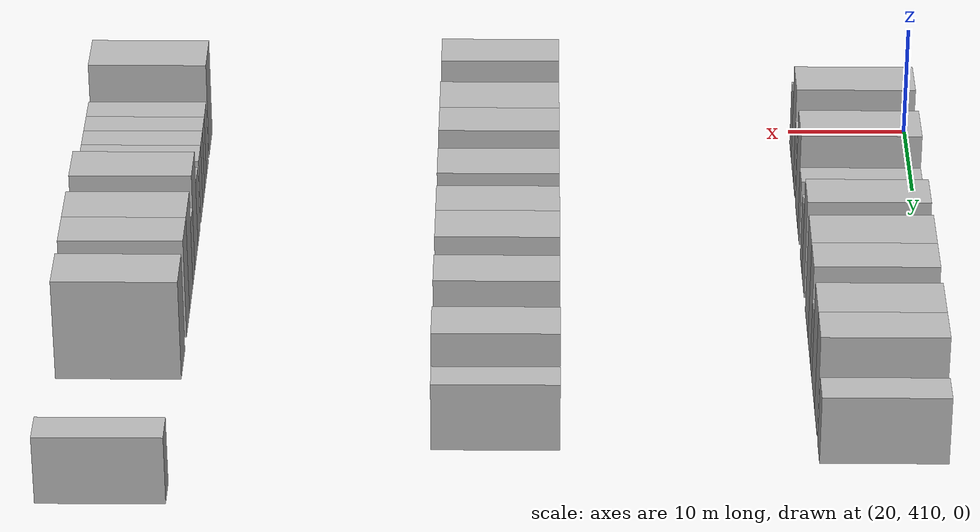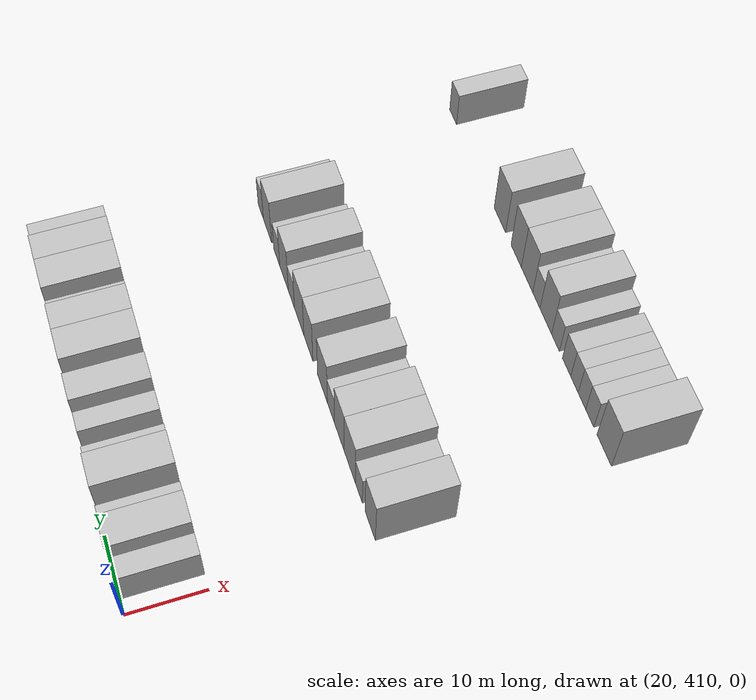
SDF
<sdf version="1.6">
 <world name="default">
  <model name="building_222">
   <static>1</static>
   <pose>25.0000 413.2878 0 0.000000 0.000000 0.000000</pose>
   <link name="link">
    <pose>0 0 3.00 0 0 0</pose>
    <collision name="collision"><geometry><box><size>10.0000 2.7403 6.0000</size></box></geometry></collision>
    <visual name="visual">
     <cast_shadows>0</cast_shadows>
     <geometry><box><size>10.0000 2.7403 6.0000</size></box></geometry>
     <material>
      <script>
       <uri>model://HANNAS_wall/materials/scripts</uri>
       <uri>model://HANNAS_wall/materials/textures</uri>
       <name>vrc/HANNAS_wall</name>
      </script>
     </material>
    </visual>
   </link>
  </model>
  <model name="building_223">
   <static>1</static>
   <pose>25.0000 416.7062 0 0.000000 0.000000 0.000000</pose>
   <link name="link">
    <pose>0 0 4.50 0 0 0</pose>
    <collision name="collision"><geometry><box><size>10.0000 4.0963 9.0000</size></box></geometry></collision>
    <visual name="visual">
     <cast_shadows>0</cast_shadows>
     <geometry><box><size>10.0000 4.0963 9.0000</size></box></geometry>
     <material>
      <script>
       <uri>model://HANNAS_wall/materials/scripts</uri>
       <uri>model://HANNAS_wall/materials/textures</uri>
       <name>vrc/HANNAS_wall</name>
      </script>
     </material>
    </visual>
   </link>
  </model>
  <model name="building_224">
   <static>1</static>
   <pose>25.0000 420.0218 0 0.000000 0.000000 0.000000</pose>
   <link name="link">
    <pose>0 0 3.00 0 0 0</pose>
    <collision name="collision"><geometry><box><size>10.0000 2.5350 6.0000</size></box></geometry></collision>
    <visual name="visual">
     <cast_shadows>0</cast_shadows>
     <geometry><box><size>10.0000 2.5350 6.0000</size></box></geometry>
     <material>
      <script>
       <uri>model://HANNAS_wall/materials/scripts</uri>
       <uri>model://HANNAS_wall/materials/textures</uri>
       <name>vrc/HANNAS_wall</name>
      </script>
     </material>
    </visual>
   </link>
  </model>
  <model name="building_225">
   <static>1</static>
   <pose>25.0000 424.4759 0 0.000000 0.000000 0.000000</pose>
   <link name="link">
    <pose>0 0 4.50 0 0 0</pose>
    <collision name="collision"><geometry><box><size>10.0000 4.3731 9.0000</size></box></geometry></collision>
    <visual name="visual">
     <cast_shadows>0</cast_shadows>
     <geometry><box><size>10.0000 4.3731 9.0000</size></box></geometry>
     <material>
      <script>
       <uri>model://HANNAS_wall/materials/scripts</uri>
       <uri>model://HANNAS_wall/materials/textures</uri>
       <name>vrc/HANNAS_wall</name>
      </script>
     </material>
    </visual>
   </link>
  </model>
  <model name="building_226">
   <static>1</static>
   <pose>25.0000 427.8697 0 0.000000 0.000000 0.000000</pose>
   <link name="link">
    <pose>0 0 3.00 0 0 0</pose>
    <collision name="collision"><geometry><box><size>10.0000 2.4147 6.0000</size></box></geometry></collision>
    <visual name="visual">
     <cast_shadows>0</cast_shadows>
     <geometry><box><size>10.0000 2.4147 6.0000</size></box></geometry>
     <material>
      <script>
       <uri>model://HANNAS_wall/materials/scripts</uri>
       <uri>model://HANNAS_wall/materials/textures</uri>
       <name>vrc/HANNAS_wall</name>
      </script>
     </material>
    </visual>
   </link>
  </model>
  <model name="building_227">
   <static>1</static>
   <pose>25.0000 432.4259 0 0.000000 0.000000 0.000000</pose>
   <link name="link">
    <pose>0 0 3.00 0 0 0</pose>
    <collision name="collision"><geometry><box><size>10.0000 2.6976 6.0000</size></box></geometry></collision>
    <visual name="visual">
     <cast_shadows>0</cast_shadows>
     <geometry><box><size>10.0000 2.6976 6.0000</size></box></geometry>
     <material>
      <script>
       <uri>model://HANNAS_wall/materials/scripts</uri>
       <uri>model://HANNAS_wall/materials/textures</uri>
       <name>vrc/HANNAS_wall</name>
      </script>
     </material>
    </visual>
   </link>
  </model>
  <model name="building_228">
   <static>1</static>
   <pose>25.0000 435.6476 0 0.000000 0.000000 0.000000</pose>
   <link name="link">
    <pose>0 0 4.50 0 0 0</pose>
    <collision name="collision"><geometry><box><size>10.0000 3.7458 9.0000</size></box></geometry></collision>
    <visual name="visual">
     <cast_shadows>0</cast_shadows>
     <geometry><box><size>10.0000 3.7458 9.0000</size></box></geometry>
     <material>
      <script>
       <uri>model://HANNAS_wall/materials/scripts</uri>
       <uri>model://HANNAS_wall/materials/textures</uri>
       <name>vrc/HANNAS_wall</name>
      </script>
     </material>
    </visual>
   </link>
  </model>
  <model name="building_229">
   <static>1</static>
   <pose>25.0000 441.7066 0 0.000000 0.000000 0.000000</pose>
   <link name="link">
    <pose>0 0 4.50 0 0 0</pose>
    <collision name="collision"><geometry><box><size>10.0000 4.3723 9.0000</size></box></geometry></collision>
    <visual name="visual">
     <cast_shadows>0</cast_shadows>
     <geometry><box><size>10.0000 4.3723 9.0000</size></box></geometry>
     <material>
      <script>
       <uri>model://HANNAS_wall/materials/scripts</uri>
       <uri>model://HANNAS_wall/materials/textures</uri>
       <name>vrc/HANNAS_wall</name>
      </script>
     </material>
    </visual>
   </link>
  </model>
  <model name="building_230">
   <static>1</static>
   <pose>25.0000 445.7479 0 0.000000 0.000000 0.000000</pose>
   <link name="link">
    <pose>0 0 4.50 0 0 0</pose>
    <collision name="collision"><geometry><box><size>10.0000 3.7103 9.0000</size></box></geometry></collision>
    <visual name="visual">
     <cast_shadows>0</cast_shadows>
     <geometry><box><size>10.0000 3.7103 9.0000</size></box></geometry>
     <material>
      <script>
       <uri>model://HANNAS_wall/materials/scripts</uri>
       <uri>model://HANNAS_wall/materials/textures</uri>
       <name>vrc/HANNAS_wall</name>
      </script>
     </material>
    </visual>
   </link>
  </model>
  <model name="building_231">
   <static>1</static>
   <pose>25.0000 448.8090 0 0.000000 0.000000 0.000000</pose>
   <link name="link">
    <pose>0 0 3.00 0 0 0</pose>
    <collision name="collision"><geometry><box><size>10.0000 2.4120 6.0000</size></box></geometry></collision>
    <visual name="visual">
     <cast_shadows>0</cast_shadows>
     <geometry><box><size>10.0000 2.4120 6.0000</size></box></geometry>
     <material>
      <script>
       <uri>model://HANNAS_wall/materials/scripts</uri>
       <uri>model://HANNAS_wall/materials/textures</uri>
       <name>vrc/HANNAS_wall</name>
      </script>
     </material>
    </visual>
   </link>
  </model>
  <model name="building_232">
   <static>1</static>
   <pose>25.0000 452.2034 0 0.000000 0.000000 0.000000</pose>
   <link name="link">
    <pose>0 0 4.50 0 0 0</pose>
    <collision name="collision"><geometry><box><size>10.0000 4.3769 9.0000</size></box></geometry></collision>
    <visual name="visual">
     <cast_shadows>0</cast_shadows>
     <geometry><box><size>10.0000 4.3769 9.0000</size></box></geometry>
     <material>
      <script>
       <uri>model://HANNAS_wall/materials/scripts</uri>
       <uri>model://HANNAS_wall/materials/textures</uri>
       <name>vrc/HANNAS_wall</name>
      </script>
     </material>
    </visual>
   </link>
  </model>
  <model name="building_233">
   <static>1</static>
   <pose>25.0000 456.2679 0 0.000000 0.000000 0.000000</pose>
   <link name="link">
    <pose>0 0 4.50 0 0 0</pose>
    <collision name="collision"><geometry><box><size>10.0000 3.7521 9.0000</size></box></geometry></collision>
    <visual name="visual">
     <cast_shadows>0</cast_shadows>
     <geometry><box><size>10.0000 3.7521 9.0000</size></box></geometry>
     <material>
      <script>
       <uri>model://HANNAS_wall/materials/scripts</uri>
       <uri>model://HANNAS_wall/materials/textures</uri>
       <name>vrc/HANNAS_wall</name>
      </script>
     </material>
    </visual>
   </link>
  </model>
  <model name="building_234">
   <static>1</static>
   <pose>25.0000 460.6029 0 0.000000 0.000000 0.000000</pose>
   <link name="link">
    <pose>0 0 3.00 0 0 0</pose>
    <collision name="collision"><geometry><box><size>10.0000 2.9178 6.0000</size></box></geometry></collision>
    <visual name="visual">
     <cast_shadows>0</cast_shadows>
     <geometry><box><size>10.0000 2.9178 6.0000</size></box></geometry>
     <material>
      <script>
       <uri>model://HANNAS_wall/materials/scripts</uri>
       <uri>model://HANNAS_wall/materials/textures</uri>
       <name>vrc/HANNAS_wall</name>
      </script>
     </material>
    </visual>
   </link>
  </model>
  <model name="building_441">
   <static>1</static>
   <pose>55.0000 411.9003 0 0.000000 0.000000 0.000000</pose>
   <link name="link">
    <pose>0 0 4.50 0 0 0</pose>
    <collision name="collision"><geometry><box><size>10.0000 3.9416 9.0000</size></box></geometry></collision>
    <visual name="visual">
     <cast_shadows>0</cast_shadows>
     <geometry><box><size>10.0000 3.9416 9.0000</size></box></geometry>
     <material>
      <script>
       <uri>model://HANNAS_wall/materials/scripts</uri>
       <uri>model://HANNAS_wall/materials/textures</uri>
       <name>vrc/HANNAS_wall</name>
      </script>
     </material>
    </visual>
   </link>
  </model>
  <model name="building_442">
   <static>1</static>
   <pose>55.0000 416.2173 0 0.000000 0.000000 0.000000</pose>
   <link name="link">
    <pose>0 0 3.00 0 0 0</pose>
    <collision name="collision"><geometry><box><size>10.0000 2.6924 6.0000</size></box></geometry></collision>
    <visual name="visual">
     <cast_shadows>0</cast_shadows>
     <geometry><box><size>10.0000 2.6924 6.0000</size></box></geometry>
     <material>
      <script>
       <uri>model://HANNAS_wall/materials/scripts</uri>
       <uri>model://HANNAS_wall/materials/textures</uri>
       <name>vrc/HANNAS_wall</name>
      </script>
     </material>
    </visual>
   </link>
  </model>
  <model name="building_443">
   <static>1</static>
   <pose>55.0000 419.7948 0 0.000000 0.000000 0.000000</pose>
   <link name="link">
    <pose>0 0 4.50 0 0 0</pose>
    <collision name="collision"><geometry><box><size>10.0000 4.4627 9.0000</size></box></geometry></collision>
    <visual name="visual">
     <cast_shadows>0</cast_shadows>
     <geometry><box><size>10.0000 4.4627 9.0000</size></box></geometry>
     <material>
      <script>
       <uri>model://HANNAS_wall/materials/scripts</uri>
       <uri>model://HANNAS_wall/materials/textures</uri>
       <name>vrc/HANNAS_wall</name>
      </script>
     </material>
    </visual>
   </link>
  </model>
  <model name="building_444">
   <static>1</static>
   <pose>55.0000 423.9864 0 0.000000 0.000000 0.000000</pose>
   <link name="link">
    <pose>0 0 4.50 0 0 0</pose>
    <collision name="collision"><geometry><box><size>10.0000 3.9204 9.0000</size></box></geometry></collision>
    <visual name="visual">
     <cast_shadows>0</cast_shadows>
     <geometry><box><size>10.0000 3.9204 9.0000</size></box></geometry>
     <material>
      <script>
       <uri>model://HANNAS_wall/materials/scripts</uri>
       <uri>model://HANNAS_wall/materials/textures</uri>
       <name>vrc/HANNAS_wall</name>
      </script>
     </material>
    </visual>
   </link>
  </model>
  <model name="building_445">
   <static>1</static>
   <pose>55.0000 427.4232 0 0.000000 0.000000 0.000000</pose>
   <link name="link">
    <pose>0 0 3.00 0 0 0</pose>
    <collision name="collision"><geometry><box><size>10.0000 2.9534 6.0000</size></box></geometry></collision>
    <visual name="visual">
     <cast_shadows>0</cast_shadows>
     <geometry><box><size>10.0000 2.9534 6.0000</size></box></geometry>
     <material>
      <script>
       <uri>model://HANNAS_wall/materials/scripts</uri>
       <uri>model://HANNAS_wall/materials/textures</uri>
       <name>vrc/HANNAS_wall</name>
      </script>
     </material>
    </visual>
   </link>
  </model>
  <model name="building_446">
   <static>1</static>
   <pose>55.0000 430.9792 0 0.000000 0.000000 0.000000</pose>
   <link name="link">
    <pose>0 0 4.50 0 0 0</pose>
    <collision name="collision"><geometry><box><size>10.0000 4.1584 9.0000</size></box></geometry></collision>
    <visual name="visual">
     <cast_shadows>0</cast_shadows>
     <geometry><box><size>10.0000 4.1584 9.0000</size></box></geometry>
     <material>
      <script>
       <uri>model://HANNAS_wall/materials/scripts</uri>
       <uri>model://HANNAS_wall/materials/textures</uri>
       <name>vrc/HANNAS_wall</name>
      </script>
     </material>
    </visual>
   </link>
  </model>
  <model name="building_447">
   <static>1</static>
   <pose>55.0000 437.0414 0 0.000000 0.000000 0.000000</pose>
   <link name="link">
    <pose>0 0 4.50 0 0 0</pose>
    <collision name="collision"><geometry><box><size>10.0000 3.9660 9.0000</size></box></geometry></collision>
    <visual name="visual">
     <cast_shadows>0</cast_shadows>
     <geometry><box><size>10.0000 3.9660 9.0000</size></box></geometry>
     <material>
      <script>
       <uri>model://HANNAS_wall/materials/scripts</uri>
       <uri>model://HANNAS_wall/materials/textures</uri>
       <name>vrc/HANNAS_wall</name>
      </script>
     </material>
    </visual>
   </link>
  </model>
  <model name="building_448">
   <static>1</static>
   <pose>55.0000 441.1165 0 0.000000 0.000000 0.000000</pose>
   <link name="link">
    <pose>0 0 4.50 0 0 0</pose>
    <collision name="collision"><geometry><box><size>10.0000 4.1844 9.0000</size></box></geometry></collision>
    <visual name="visual">
     <cast_shadows>0</cast_shadows>
     <geometry><box><size>10.0000 4.1844 9.0000</size></box></geometry>
     <material>
      <script>
       <uri>model://HANNAS_wall/materials/scripts</uri>
       <uri>model://HANNAS_wall/materials/textures</uri>
       <name>vrc/HANNAS_wall</name>
      </script>
     </material>
    </visual>
   </link>
  </model>
  <model name="building_449">
   <static>1</static>
   <pose>55.0000 444.6138 0 0.000000 0.000000 0.000000</pose>
   <link name="link">
    <pose>0 0 3.00 0 0 0</pose>
    <collision name="collision"><geometry><box><size>10.0000 2.8102 6.0000</size></box></geometry></collision>
    <visual name="visual">
     <cast_shadows>0</cast_shadows>
     <geometry><box><size>10.0000 2.8102 6.0000</size></box></geometry>
     <material>
      <script>
       <uri>model://HANNAS_wall/materials/scripts</uri>
       <uri>model://HANNAS_wall/materials/textures</uri>
       <name>vrc/HANNAS_wall</name>
      </script>
     </material>
    </visual>
   </link>
  </model>
  <model name="building_450">
   <static>1</static>
   <pose>55.0000 448.0032 0 0.000000 0.000000 0.000000</pose>
   <link name="link">
    <pose>0 0 4.50 0 0 0</pose>
    <collision name="collision"><geometry><box><size>10.0000 3.9685 9.0000</size></box></geometry></collision>
    <visual name="visual">
     <cast_shadows>0</cast_shadows>
     <geometry><box><size>10.0000 3.9685 9.0000</size></box></geometry>
     <material>
      <script>
       <uri>model://HANNAS_wall/materials/scripts</uri>
       <uri>model://HANNAS_wall/materials/textures</uri>
       <name>vrc/HANNAS_wall</name>
      </script>
     </material>
    </visual>
   </link>
  </model>
  <model name="building_451">
   <static>1</static>
   <pose>55.0000 451.4099 0 0.000000 0.000000 0.000000</pose>
   <link name="link">
    <pose>0 0 3.00 0 0 0</pose>
    <collision name="collision"><geometry><box><size>10.0000 2.8450 6.0000</size></box></geometry></collision>
    <visual name="visual">
     <cast_shadows>0</cast_shadows>
     <geometry><box><size>10.0000 2.8450 6.0000</size></box></geometry>
     <material>
      <script>
       <uri>model://HANNAS_wall/materials/scripts</uri>
       <uri>model://HANNAS_wall/materials/textures</uri>
       <name>vrc/HANNAS_wall</name>
      </script>
     </material>
    </visual>
   </link>
  </model>
  <model name="building_452">
   <static>1</static>
   <pose>55.0000 455.8184 0 0.000000 0.000000 0.000000</pose>
   <link name="link">
    <pose>0 0 4.50 0 0 0</pose>
    <collision name="collision"><geometry><box><size>10.0000 3.9719 9.0000</size></box></geometry></collision>
    <visual name="visual">
     <cast_shadows>0</cast_shadows>
     <geometry><box><size>10.0000 3.9719 9.0000</size></box></geometry>
     <material>
      <script>
       <uri>model://HANNAS_wall/materials/scripts</uri>
       <uri>model://HANNAS_wall/materials/textures</uri>
       <name>vrc/HANNAS_wall</name>
      </script>
     </material>
    </visual>
   </link>
  </model>
  <model name="building_453">
   <static>1</static>
   <pose>55.0000 459.1087 0 0.000000 0.000000 0.000000</pose>
   <link name="link">
    <pose>0 0 3.00 0 0 0</pose>
    <collision name="collision"><geometry><box><size>10.0000 2.6087 6.0000</size></box></geometry></collision>
    <visual name="visual">
     <cast_shadows>0</cast_shadows>
     <geometry><box><size>10.0000 2.6087 6.0000</size></box></geometry>
     <material>
      <script>
       <uri>model://HANNAS_wall/materials/scripts</uri>
       <uri>model://HANNAS_wall/materials/textures</uri>
       <name>vrc/HANNAS_wall</name>
      </script>
     </material>
    </visual>
   </link>
  </model>
  <model name="building_661">
   <static>1</static>
   <pose>85.0000 412.6482 0 0.000000 0.000000 0.000000</pose>
   <link name="link">
    <pose>0 0 4.50 0 0 0</pose>
    <collision name="collision"><geometry><box><size>10.0000 4.4779 9.0000</size></box></geometry></collision>
    <visual name="visual">
     <cast_shadows>0</cast_shadows>
     <geometry><box><size>10.0000 4.4779 9.0000</size></box></geometry>
     <material>
      <script>
       <uri>model://HANNAS_wall/materials/scripts</uri>
       <uri>model://HANNAS_wall/materials/textures</uri>
       <name>vrc/HANNAS_wall</name>
      </script>
     </material>
    </visual>
   </link>
  </model>
  <model name="building_662">
   <static>1</static>
   <pose>85.0000 417.1730 0 0.000000 0.000000 0.000000</pose>
   <link name="link">
    <pose>0 0 3.00 0 0 0</pose>
    <collision name="collision"><geometry><box><size>10.0000 2.5716 6.0000</size></box></geometry></collision>
    <visual name="visual">
     <cast_shadows>0</cast_shadows>
     <geometry><box><size>10.0000 2.5716 6.0000</size></box></geometry>
     <material>
      <script>
       <uri>model://HANNAS_wall/materials/scripts</uri>
       <uri>model://HANNAS_wall/materials/textures</uri>
       <name>vrc/HANNAS_wall</name>
      </script>
     </material>
    </visual>
   </link>
  </model>
  <model name="building_663">
   <static>1</static>
   <pose>85.0000 419.6757 0 0.000000 0.000000 0.000000</pose>
   <link name="link">
    <pose>0 0 3.00 0 0 0</pose>
    <collision name="collision"><geometry><box><size>10.0000 2.4337 6.0000</size></box></geometry></collision>
    <visual name="visual">
     <cast_shadows>0</cast_shadows>
     <geometry><box><size>10.0000 2.4337 6.0000</size></box></geometry>
     <material>
      <script>
       <uri>model://HANNAS_wall/materials/scripts</uri>
       <uri>model://HANNAS_wall/materials/textures</uri>
       <name>vrc/HANNAS_wall</name>
      </script>
     </material>
    </visual>
   </link>
  </model>
  <model name="building_664">
   <static>1</static>
   <pose>85.0000 422.1059 0 0.000000 0.000000 0.000000</pose>
   <link name="link">
    <pose>0 0 3.00 0 0 0</pose>
    <collision name="collision"><geometry><box><size>10.0000 2.4269 6.0000</size></box></geometry></collision>
    <visual name="visual">
     <cast_shadows>0</cast_shadows>
     <geometry><box><size>10.0000 2.4269 6.0000</size></box></geometry>
     <material>
      <script>
       <uri>model://HANNAS_wall/materials/scripts</uri>
       <uri>model://HANNAS_wall/materials/textures</uri>
       <name>vrc/HANNAS_wall</name>
      </script>
     </material>
    </visual>
   </link>
  </model>
  <model name="building_665">
   <static>1</static>
   <pose>85.0000 424.7002 0 0.000000 0.000000 0.000000</pose>
   <link name="link">
    <pose>0 0 3.00 0 0 0</pose>
    <collision name="collision"><geometry><box><size>10.0000 2.7617 6.0000</size></box></geometry></collision>
    <visual name="visual">
     <cast_shadows>0</cast_shadows>
     <geometry><box><size>10.0000 2.7617 6.0000</size></box></geometry>
     <material>
      <script>
       <uri>model://HANNAS_wall/materials/scripts</uri>
       <uri>model://HANNAS_wall/materials/textures</uri>
       <name>vrc/HANNAS_wall</name>
      </script>
     </material>
    </visual>
   </link>
  </model>
  <model name="building_666">
   <static>1</static>
   <pose>85.0000 428.4017 0 0.000000 0.000000 0.000000</pose>
   <link name="link">
    <pose>0 0 3.00 0 0 0</pose>
    <collision name="collision"><geometry><box><size>10.0000 2.6412 6.0000</size></box></geometry></collision>
    <visual name="visual">
     <cast_shadows>0</cast_shadows>
     <geometry><box><size>10.0000 2.6412 6.0000</size></box></geometry>
     <material>
      <script>
       <uri>model://HANNAS_wall/materials/scripts</uri>
       <uri>model://HANNAS_wall/materials/textures</uri>
       <name>vrc/HANNAS_wall</name>
      </script>
     </material>
    </visual>
   </link>
  </model>
  <model name="building_667">
   <static>1</static>
   <pose>85.0000 431.7182 0 0.000000 0.000000 0.000000</pose>
   <link name="link">
    <pose>0 0 4.50 0 0 0</pose>
    <collision name="collision"><geometry><box><size>10.0000 3.9918 9.0000</size></box></geometry></collision>
    <visual name="visual">
     <cast_shadows>0</cast_shadows>
     <geometry><box><size>10.0000 3.9918 9.0000</size></box></geometry>
     <material>
      <script>
       <uri>model://HANNAS_wall/materials/scripts</uri>
       <uri>model://HANNAS_wall/materials/textures</uri>
       <name>vrc/HANNAS_wall</name>
      </script>
     </material>
    </visual>
   </link>
  </model>
  <model name="building_668">
   <static>1</static>
   <pose>85.0000 434.9879 0 0.000000 0.000000 0.000000</pose>
   <link name="link">
    <pose>0 0 3.00 0 0 0</pose>
    <collision name="collision"><geometry><box><size>10.0000 2.5478 6.0000</size></box></geometry></collision>
    <visual name="visual">
     <cast_shadows>0</cast_shadows>
     <geometry><box><size>10.0000 2.5478 6.0000</size></box></geometry>
     <material>
      <script>
       <uri>model://HANNAS_wall/materials/scripts</uri>
       <uri>model://HANNAS_wall/materials/textures</uri>
       <name>vrc/HANNAS_wall</name>
      </script>
     </material>
    </visual>
   </link>
  </model>
  <model name="building_669">
   <static>1</static>
   <pose>85.0000 438.3055 0 0.000000 0.000000 0.000000</pose>
   <link name="link">
    <pose>0 0 4.50 0 0 0</pose>
    <collision name="collision"><geometry><box><size>10.0000 4.0872 9.0000</size></box></geometry></collision>
    <visual name="visual">
     <cast_shadows>0</cast_shadows>
     <geometry><box><size>10.0000 4.0872 9.0000</size></box></geometry>
     <material>
      <script>
       <uri>model://HANNAS_wall/materials/scripts</uri>
       <uri>model://HANNAS_wall/materials/textures</uri>
       <name>vrc/HANNAS_wall</name>
      </script>
     </material>
    </visual>
   </link>
  </model>
  <model name="building_670">
   <static>1</static>
   <pose>85.0000 442.2173 0 0.000000 0.000000 0.000000</pose>
   <link name="link">
    <pose>0 0 4.50 0 0 0</pose>
    <collision name="collision"><geometry><box><size>10.0000 3.7364 9.0000</size></box></geometry></collision>
    <visual name="visual">
     <cast_shadows>0</cast_shadows>
     <geometry><box><size>10.0000 3.7364 9.0000</size></box></geometry>
     <material>
      <script>
       <uri>model://HANNAS_wall/materials/scripts</uri>
       <uri>model://HANNAS_wall/materials/textures</uri>
       <name>vrc/HANNAS_wall</name>
      </script>
     </material>
    </visual>
   </link>
  </model>
  <model name="building_671">
   <static>1</static>
   <pose>85.0000 448.2421 0 0.000000 0.000000 0.000000</pose>
   <link name="link">
    <pose>0 0 4.50 0 0 0</pose>
    <collision name="collision"><geometry><box><size>10.0000 4.3132 9.0000</size></box></geometry></collision>
    <visual name="visual">
     <cast_shadows>0</cast_shadows>
     <geometry><box><size>10.0000 4.3132 9.0000</size></box></geometry>
     <material>
      <script>
       <uri>model://HANNAS_wall/materials/scripts</uri>
       <uri>model://HANNAS_wall/materials/textures</uri>
       <name>vrc/HANNAS_wall</name>
      </script>
     </material>
    </visual>
   </link>
  </model>
  <model name="building_672">
   <static>1</static>
   <pose>85.0000 466.6599 0 0.000000 0.000000 0.000000</pose>
   <link name="link">
    <pose>0 0 3.00 0 0 0</pose>
    <collision name="collision"><geometry><box><size>10.0000 2.8408 6.0000</size></box></geometry></collision>
    <visual name="visual">
     <cast_shadows>0</cast_shadows>
     <geometry><box><size>10.0000 2.8408 6.0000</size></box></geometry>
     <material>
      <script>
       <uri>model://HANNAS_wall/materials/scripts</uri>
       <uri>model://HANNAS_wall/materials/textures</uri>
       <name>vrc/HANNAS_wall</name>
      </script>
     </material>
    </visual>
   </link>
  </model>
 </world>
</sdf>
